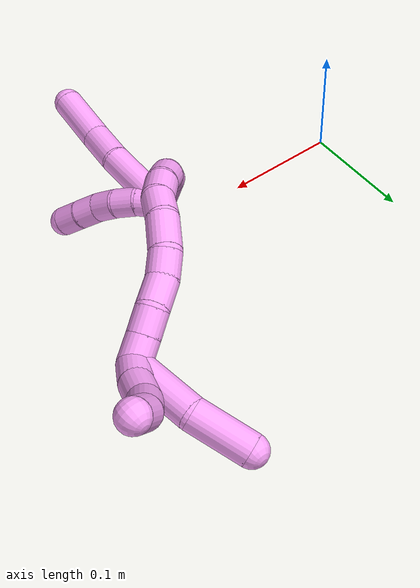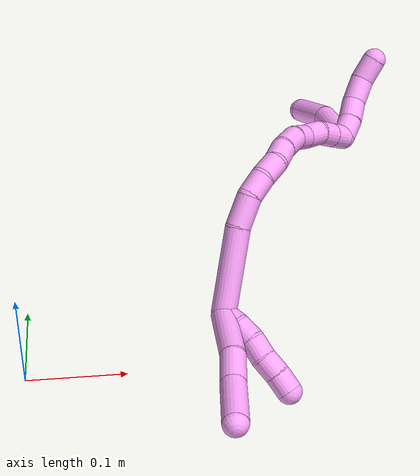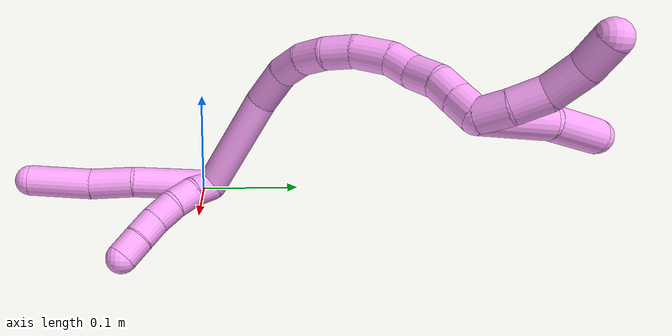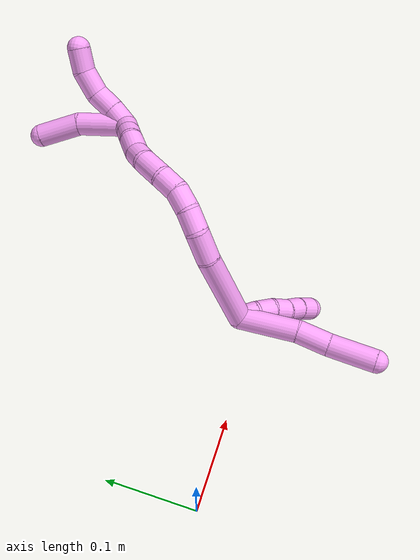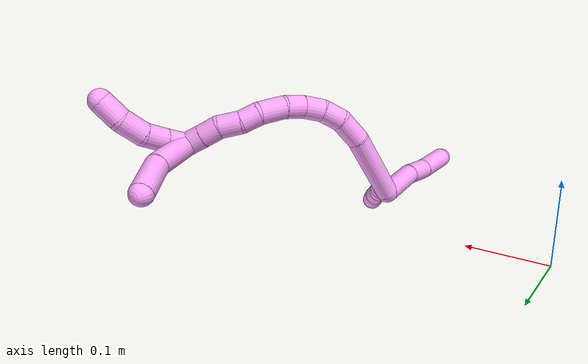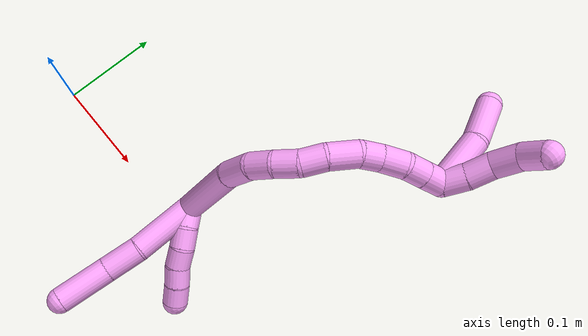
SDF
<sdf version="1.7">
 <world name="default">
  <model name="4">
   <static>0</static>
   <link name="4">
    <collision name="collision-cylinder-e_1_2_8">
     <pose>-3.3e-05 -0.001023 -0.031783 3.10941 -0.001044 -0.06487</pose>
     <geometry><cylinder><radius>0.0125</radius><length>0.063599</length></cylinder></geometry>
     <surface>
      <friction><ode><mu>1.16</mu><mu2>1.16</mu2><slip1>0</slip1><slip2>0</slip2></ode></friction>
      <contact><ode><kp>1e+06</kp><kd>1</kd><max_vel>0</max_vel><min_depth>0.001</min_depth></ode></contact>
     </surface>
    </collision>
    <visual name="visual-cylinder-e_1_2_8">
     <pose>-3.3e-05 -0.001023 -0.031783 3.10941 -0.001044 -0.06487</pose>
     <geometry><cylinder><radius>0.0125</radius><length>0.063599</length></cylinder></geometry>
     <material><ambient>1 0.65098 0.996078 1</ambient></material>
    </visual>
    <collision name="collision-cylinder-e_2_8_9">
     <pose>0.000993 -0.005705 -0.080746 2.93179 0.060249 0.557502</pose>
     <geometry><cylinder><radius>0.0125</radius><length>0.035195</length></cylinder></geometry>
     <surface>
      <friction><ode><mu>1.16</mu><mu2>1.16</mu2><slip1>0</slip1><slip2>0</slip2></ode></friction>
      <contact><ode><kp>1e+06</kp><kd>1</kd><max_vel>0</max_vel><min_depth>0.001</min_depth></ode></contact>
     </surface>
    </collision>
    <visual name="visual-cylinder-e_2_8_9">
     <pose>0.000993 -0.005705 -0.080746 2.93179 0.060249 0.557502</pose>
     <geometry><cylinder><radius>0.0125</radius><length>0.035195</length></cylinder></geometry>
     <material><ambient>1 0.65098 0.996078 1</ambient></material>
    </visual>
    <collision name="collision-cylinder-e_3_9_6">
     <pose>0.004317 -0.01164 -0.123328 3.05219 0.088542 1.5611</pose>
     <geometry><cylinder><radius>0.0125</radius><length>0.051206</length></cylinder></geometry>
     <surface>
      <friction><ode><mu>1.16</mu><mu2>1.16</mu2><slip1>0</slip1><slip2>0</slip2></ode></friction>
      <contact><ode><kp>1e+06</kp><kd>1</kd><max_vel>0</max_vel><min_depth>0.001</min_depth></ode></contact>
     </surface>
    </collision>
    <visual name="visual-cylinder-e_3_9_6">
     <pose>0.004317 -0.01164 -0.123328 3.05219 0.088542 1.5611</pose>
     <geometry><cylinder><radius>0.0125</radius><length>0.051206</length></cylinder></geometry>
     <material><ambient>1 0.65098 0.996078 1</ambient></material>
    </visual>
    <collision name="collision-cylinder-e_1_2_10">
     <pose>-0.006199 0.00119 -0.007756 -2.98936 -0.668604 2.70933</pose>
     <geometry><cylinder><radius>0.0125</radius><length>0.02</length></cylinder></geometry>
     <surface>
      <friction><ode><mu>1.16</mu><mu2>1.16</mu2><slip1>0</slip1><slip2>0</slip2></ode></friction>
      <contact><ode><kp>1e+06</kp><kd>1</kd><max_vel>0</max_vel><min_depth>0.001</min_depth></ode></contact>
     </surface>
    </collision>
    <visual name="visual-cylinder-e_1_2_10">
     <pose>-0.006199 0.00119 -0.007756 -2.98936 -0.668604 2.70933</pose>
     <geometry><cylinder><radius>0.0125</radius><length>0.02</length></cylinder></geometry>
     <material><ambient>1 0.65098 0.996078 1</ambient></material>
    </visual>
    <collision name="collision-cylinder-e_2_10_11">
     <pose>-0.019267 0.001507 -0.022727 3.02122 -0.75724 -2.84093</pose>
     <geometry><cylinder><radius>0.0125</radius><length>0.02</length></cylinder></geometry>
     <surface>
      <friction><ode><mu>1.16</mu><mu2>1.16</mu2><slip1>0</slip1><slip2>0</slip2></ode></friction>
      <contact><ode><kp>1e+06</kp><kd>1</kd><max_vel>0</max_vel><min_depth>0.001</min_depth></ode></contact>
     </surface>
    </collision>
    <visual name="visual-cylinder-e_2_10_11">
     <pose>-0.019267 0.001507 -0.022727 3.02122 -0.75724 -2.84093</pose>
     <geometry><cylinder><radius>0.0125</radius><length>0.02</length></cylinder></geometry>
     <material><ambient>1 0.65098 0.996078 1</ambient></material>
    </visual>
    <collision name="collision-cylinder-e_3_11_12">
     <pose>-0.032717 -0.002492 -0.036791 2.71339 -0.71827 -2.09164</pose>
     <geometry><cylinder><radius>0.0125</radius><length>0.02</length></cylinder></geometry>
     <surface>
      <friction><ode><mu>1.16</mu><mu2>1.16</mu2><slip1>0</slip1><slip2>0</slip2></ode></friction>
      <contact><ode><kp>1e+06</kp><kd>1</kd><max_vel>0</max_vel><min_depth>0.001</min_depth></ode></contact>
     </surface>
    </collision>
    <visual name="visual-cylinder-e_3_11_12">
     <pose>-0.032717 -0.002492 -0.036791 2.71339 -0.71827 -2.09164</pose>
     <geometry><cylinder><radius>0.0125</radius><length>0.02</length></cylinder></geometry>
     <material><ambient>1 0.65098 0.996078 1</ambient></material>
    </visual>
    <collision name="collision-cylinder-e_4_12_13">
     <pose>-0.047191 -0.008129 -0.049244 2.72043 -0.909714 -2.31751</pose>
     <geometry><cylinder><radius>0.0125</radius><length>0.02</length></cylinder></geometry>
     <surface>
      <friction><ode><mu>1.16</mu><mu2>1.16</mu2><slip1>0</slip1><slip2>0</slip2></ode></friction>
      <contact><ode><kp>1e+06</kp><kd>1</kd><max_vel>0</max_vel><min_depth>0.001</min_depth></ode></contact>
     </surface>
    </collision>
    <visual name="visual-cylinder-e_4_12_13">
     <pose>-0.047191 -0.008129 -0.049244 2.72043 -0.909714 -2.31751</pose>
     <geometry><cylinder><radius>0.0125</radius><length>0.02</length></cylinder></geometry>
     <material><ambient>1 0.65098 0.996078 1</ambient></material>
    </visual>
    <collision name="collision-cylinder-e_5_13_5">
     <pose>-0.062521 -0.014026 -0.060611 2.61024 -0.8385 -2.0453</pose>
     <geometry><cylinder><radius>0.0125</radius><length>0.02</length></cylinder></geometry>
     <surface>
      <friction><ode><mu>1.16</mu><mu2>1.16</mu2><slip1>0</slip1><slip2>0</slip2></ode></friction>
      <contact><ode><kp>1e+06</kp><kd>1</kd><max_vel>0</max_vel><min_depth>0.001</min_depth></ode></contact>
     </surface>
    </collision>
    <visual name="visual-cylinder-e_5_13_5">
     <pose>-0.062521 -0.014026 -0.060611 2.61024 -0.8385 -2.0453</pose>
     <geometry><cylinder><radius>0.0125</radius><length>0.02</length></cylinder></geometry>
     <material><ambient>1 0.65098 0.996078 1</ambient></material>
    </visual>
    <collision name="collision-cylinder-e_1_2_14">
     <pose>0.009866 0.038268 0.017063 -1.15136 0.231257 -0.150477</pose>
     <geometry><cylinder><radius>0.0125</radius><length>0.086091</length></cylinder></geometry>
     <surface>
      <friction><ode><mu>1.16</mu><mu2>1.16</mu2><slip1>0</slip1><slip2>0</slip2></ode></friction>
      <contact><ode><kp>1e+06</kp><kd>1</kd><max_vel>0</max_vel><min_depth>0.001</min_depth></ode></contact>
     </surface>
    </collision>
    <visual name="visual-cylinder-e_1_2_14">
     <pose>0.009866 0.038268 0.017063 -1.15136 0.231257 -0.150477</pose>
     <geometry><cylinder><radius>0.0125</radius><length>0.086091</length></cylinder></geometry>
     <material><ambient>1 0.65098 0.996078 1</ambient></material>
    </visual>
    <collision name="collision-cylinder-e_2_14_15">
     <pose>0.019964 0.090963 0.040831 -1.1358 0.014583 -0.009304</pose>
     <geometry><cylinder><radius>0.0125</radius><length>0.031822</length></cylinder></geometry>
     <surface>
      <friction><ode><mu>1.16</mu><mu2>1.16</mu2><slip1>0</slip1><slip2>0</slip2></ode></friction>
      <contact><ode><kp>1e+06</kp><kd>1</kd><max_vel>0</max_vel><min_depth>0.001</min_depth></ode></contact>
     </surface>
    </collision>
    <visual name="visual-cylinder-e_2_14_15">
     <pose>0.019964 0.090963 0.040831 -1.1358 0.014583 -0.009304</pose>
     <geometry><cylinder><radius>0.0125</radius><length>0.031822</length></cylinder></geometry>
     <material><ambient>1 0.65098 0.996078 1</ambient></material>
    </visual>
    <collision name="collision-cylinder-e_3_15_16">
     <pose>0.016718 0.114783 0.053829 -0.980394 -0.298436 0.160107</pose>
     <geometry><cylinder><radius>0.0125</radius><length>0.023658</length></cylinder></geometry>
     <surface>
      <friction><ode><mu>1.16</mu><mu2>1.16</mu2><slip1>0</slip1><slip2>0</slip2></ode></friction>
      <contact><ode><kp>1e+06</kp><kd>1</kd><max_vel>0</max_vel><min_depth>0.001</min_depth></ode></contact>
     </surface>
    </collision>
    <visual name="visual-cylinder-e_3_15_16">
     <pose>0.016718 0.114783 0.053829 -0.980394 -0.298436 0.160107</pose>
     <geometry><cylinder><radius>0.0125</radius><length>0.023658</length></cylinder></geometry>
     <material><ambient>1 0.65098 0.996078 1</ambient></material>
    </visual>
    <collision name="collision-cylinder-e_4_16_17">
     <pose>0.008173 0.13103 0.067565 -0.744375 -0.464332 0.184074</pose>
     <geometry><cylinder><radius>0.0125</radius><length>0.02263</length></cylinder></geometry>
     <surface>
      <friction><ode><mu>1.16</mu><mu2>1.16</mu2><slip1>0</slip1><slip2>0</slip2></ode></friction>
      <contact><ode><kp>1e+06</kp><kd>1</kd><max_vel>0</max_vel><min_depth>0.001</min_depth></ode></contact>
     </surface>
    </collision>
    <visual name="visual-cylinder-e_4_16_17">
     <pose>0.008173 0.13103 0.067565 -0.744375 -0.464332 0.184074</pose>
     <geometry><cylinder><radius>0.0125</radius><length>0.02263</length></cylinder></geometry>
     <material><ambient>1 0.65098 0.996078 1</ambient></material>
    </visual>
    <collision name="collision-cylinder-e_5_17_18">
     <pose>-0.000758 0.142391 0.084714 -0.434552 -0.346408 0.077209</pose>
     <geometry><cylinder><radius>0.0125</radius><length>0.022759</length></cylinder></geometry>
     <surface>
      <friction><ode><mu>1.16</mu><mu2>1.16</mu2><slip1>0</slip1><slip2>0</slip2></ode></friction>
      <contact><ode><kp>1e+06</kp><kd>1</kd><max_vel>0</max_vel><min_depth>0.001</min_depth></ode></contact>
     </surface>
    </collision>
    <visual name="visual-cylinder-e_5_17_18">
     <pose>-0.000758 0.142391 0.084714 -0.434552 -0.346408 0.077209</pose>
     <geometry><cylinder><radius>0.0125</radius><length>0.022759</length></cylinder></geometry>
     <material><ambient>1 0.65098 0.996078 1</ambient></material>
    </visual>
    <collision name="collision-cylinder-e_6_18_19">
     <pose>-0.012081 0.150086 0.106296 -0.26242 -0.545407 0.073782</pose>
     <geometry><cylinder><radius>0.0125</radius><length>0.028759</length></cylinder></geometry>
     <surface>
      <friction><ode><mu>1.16</mu><mu2>1.16</mu2><slip1>0</slip1><slip2>0</slip2></ode></friction>
      <contact><ode><kp>1e+06</kp><kd>1</kd><max_vel>0</max_vel><min_depth>0.001</min_depth></ode></contact>
     </surface>
    </collision>
    <visual name="visual-cylinder-e_6_18_19">
     <pose>-0.012081 0.150086 0.106296 -0.26242 -0.545407 0.073782</pose>
     <geometry><cylinder><radius>0.0125</radius><length>0.028759</length></cylinder></geometry>
     <material><ambient>1 0.65098 0.996078 1</ambient></material>
    </visual>
    <collision name="collision-cylinder-e_7_19_20">
     <pose>-0.027039 0.153556 0.125009 -0.041027 -0.830732 0.018096</pose>
     <geometry><cylinder><radius>0.0125</radius><length>0.020308</length></cylinder></geometry>
     <surface>
      <friction><ode><mu>1.16</mu><mu2>1.16</mu2><slip1>0</slip1><slip2>0</slip2></ode></friction>
      <contact><ode><kp>1e+06</kp><kd>1</kd><max_vel>0</max_vel><min_depth>0.001</min_depth></ode></contact>
     </surface>
    </collision>
    <visual name="visual-cylinder-e_7_19_20">
     <pose>-0.027039 0.153556 0.125009 -0.041027 -0.830732 0.018096</pose>
     <geometry><cylinder><radius>0.0125</radius><length>0.020308</length></cylinder></geometry>
     <material><ambient>1 0.65098 0.996078 1</ambient></material>
    </visual>
    <collision name="collision-cylinder-e_8_20_21">
     <pose>-0.043816 0.157012 0.138551 -0.442541 -0.896649 0.215562</pose>
     <geometry><cylinder><radius>0.0125</radius><length>0.023757</length></cylinder></geometry>
     <surface>
      <friction><ode><mu>1.16</mu><mu2>1.16</mu2><slip1>0</slip1><slip2>0</slip2></ode></friction>
      <contact><ode><kp>1e+06</kp><kd>1</kd><max_vel>0</max_vel><min_depth>0.001</min_depth></ode></contact>
     </surface>
    </collision>
    <visual name="visual-cylinder-e_8_20_21">
     <pose>-0.043816 0.157012 0.138551 -0.442541 -0.896649 0.215562</pose>
     <geometry><cylinder><radius>0.0125</radius><length>0.023757</length></cylinder></geometry>
     <material><ambient>1 0.65098 0.996078 1</ambient></material>
    </visual>
    <collision name="collision-cylinder-e_9_21_22">
     <pose>-0.061845 0.16003 0.150106 0.03242 -1.06405 -0.019085</pose>
     <geometry><cylinder><radius>0.0125</radius><length>0.020012</length></cylinder></geometry>
     <surface>
      <friction><ode><mu>1.16</mu><mu2>1.16</mu2><slip1>0</slip1><slip2>0</slip2></ode></friction>
      <contact><ode><kp>1e+06</kp><kd>1</kd><max_vel>0</max_vel><min_depth>0.001</min_depth></ode></contact>
     </surface>
    </collision>
    <visual name="visual-cylinder-e_9_21_22">
     <pose>-0.061845 0.16003 0.150106 0.03242 -1.06405 -0.019085</pose>
     <geometry><cylinder><radius>0.0125</radius><length>0.020012</length></cylinder></geometry>
     <material><ambient>1 0.65098 0.996078 1</ambient></material>
    </visual>
    <collision name="collision-cylinder-e_10_22_1">
     <pose>-0.079475 0.159924 0.159773 -0.010723 -1.07411 0.006385</pose>
     <geometry><cylinder><radius>0.0125</radius><length>0.020204</length></cylinder></geometry>
     <surface>
      <friction><ode><mu>1.16</mu><mu2>1.16</mu2><slip1>0</slip1><slip2>0</slip2></ode></friction>
      <contact><ode><kp>1e+06</kp><kd>1</kd><max_vel>0</max_vel><min_depth>0.001</min_depth></ode></contact>
     </surface>
    </collision>
    <visual name="visual-cylinder-e_10_22_1">
     <pose>-0.079475 0.159924 0.159773 -0.010723 -1.07411 0.006385</pose>
     <geometry><cylinder><radius>0.0125</radius><length>0.020204</length></cylinder></geometry>
     <material><ambient>1 0.65098 0.996078 1</ambient></material>
    </visual>
    <collision name="collision-cylinder-e_1_1_23">
     <pose>-0.09106 0.166969 0.173371 -0.672377 -0.236301 0.082915</pose>
     <geometry><cylinder><radius>0.0125</radius><length>0.023099</length></cylinder></geometry>
     <surface>
      <friction><ode><mu>1.16</mu><mu2>1.16</mu2><slip1>0</slip1><slip2>0</slip2></ode></friction>
      <contact><ode><kp>1e+06</kp><kd>1</kd><max_vel>0</max_vel><min_depth>0.001</min_depth></ode></contact>
     </surface>
    </collision>
    <visual name="visual-cylinder-e_1_1_23">
     <pose>-0.09106 0.166969 0.173371 -0.672377 -0.236301 0.082915</pose>
     <geometry><cylinder><radius>0.0125</radius><length>0.023099</length></cylinder></geometry>
     <material><ambient>1 0.65098 0.996078 1</ambient></material>
    </visual>
    <collision name="collision-cylinder-e_2_23_24">
     <pose>-0.094662 0.181144 0.191974 -0.631439 -0.073737 0.024096</pose>
     <geometry><cylinder><radius>0.0125</radius><length>0.024395</length></cylinder></geometry>
     <surface>
      <friction><ode><mu>1.16</mu><mu2>1.16</mu2><slip1>0</slip1><slip2>0</slip2></ode></friction>
      <contact><ode><kp>1e+06</kp><kd>1</kd><max_vel>0</max_vel><min_depth>0.001</min_depth></ode></contact>
     </surface>
    </collision>
    <visual name="visual-cylinder-e_2_23_24">
     <pose>-0.094662 0.181144 0.191974 -0.631439 -0.073737 0.024096</pose>
     <geometry><cylinder><radius>0.0125</radius><length>0.024395</length></cylinder></geometry>
     <material><ambient>1 0.65098 0.996078 1</ambient></material>
    </visual>
    <collision name="collision-cylinder-e_3_24_25">
     <pose>-0.09634 0.199582 0.209512 -0.969772 -0.057043 0.030059</pose>
     <geometry><cylinder><radius>0.0125</radius><length>0.027343</length></cylinder></geometry>
     <surface>
      <friction><ode><mu>1.16</mu><mu2>1.16</mu2><slip1>0</slip1><slip2>0</slip2></ode></friction>
      <contact><ode><kp>1e+06</kp><kd>1</kd><max_vel>0</max_vel><min_depth>0.001</min_depth></ode></contact>
     </surface>
    </collision>
    <visual name="visual-cylinder-e_3_24_25">
     <pose>-0.09634 0.199582 0.209512 -0.969772 -0.057043 0.030059</pose>
     <geometry><cylinder><radius>0.0125</radius><length>0.027343</length></cylinder></geometry>
     <material><ambient>1 0.65098 0.996078 1</ambient></material>
    </visual>
    <collision name="collision-cylinder-e_4_25_4">
     <pose>-0.098548 0.222838 0.220734 -1.28665 -0.113748 0.08532</pose>
     <geometry><cylinder><radius>0.0125</radius><length>0.025163</length></cylinder></geometry>
     <surface>
      <friction><ode><mu>1.16</mu><mu2>1.16</mu2><slip1>0</slip1><slip2>0</slip2></ode></friction>
      <contact><ode><kp>1e+06</kp><kd>1</kd><max_vel>0</max_vel><min_depth>0.001</min_depth></ode></contact>
     </surface>
    </collision>
    <visual name="visual-cylinder-e_4_25_4">
     <pose>-0.098548 0.222838 0.220734 -1.28665 -0.113748 0.08532</pose>
     <geometry><cylinder><radius>0.0125</radius><length>0.025163</length></cylinder></geometry>
     <material><ambient>1 0.65098 0.996078 1</ambient></material>
    </visual>
    <collision name="collision-cylinder-e_1_1_26">
     <pose>-0.085387 0.157591 0.191188 0.089408 0.11072 0.004958</pose>
     <geometry><cylinder><radius>0.0125</radius><length>0.053747</length></cylinder></geometry>
     <surface>
      <friction><ode><mu>1.16</mu><mu2>1.16</mu2><slip1>0</slip1><slip2>0</slip2></ode></friction>
      <contact><ode><kp>1e+06</kp><kd>1</kd><max_vel>0</max_vel><min_depth>0.001</min_depth></ode></contact>
     </surface>
    </collision>
    <visual name="visual-cylinder-e_1_1_26">
     <pose>-0.085387 0.157591 0.191188 0.089408 0.11072 0.004958</pose>
     <geometry><cylinder><radius>0.0125</radius><length>0.053747</length></cylinder></geometry>
     <material><ambient>1 0.65098 0.996078 1</ambient></material>
    </visual>
    <collision name="collision-cylinder-e_2_26_3">
     <pose>-0.077251 0.146763 0.238692 0.383925 0.225294 0.043966</pose>
     <geometry><cylinder><radius>0.0125</radius><length>0.046253</length></cylinder></geometry>
     <surface>
      <friction><ode><mu>1.16</mu><mu2>1.16</mu2><slip1>0</slip1><slip2>0</slip2></ode></friction>
      <contact><ode><kp>1e+06</kp><kd>1</kd><max_vel>0</max_vel><min_depth>0.001</min_depth></ode></contact>
     </surface>
    </collision>
    <visual name="visual-cylinder-e_2_26_3">
     <pose>-0.077251 0.146763 0.238692 0.383925 0.225294 0.043966</pose>
     <geometry><cylinder><radius>0.0125</radius><length>0.046253</length></cylinder></geometry>
     <material><ambient>1 0.65098 0.996078 1</ambient></material>
    </visual>
    <collision name="collision-sphere-3">
     <pose>-0.072085 0.138319 0.259593 0 -0 0</pose>
     <geometry><sphere><radius>0.0125</radius></sphere></geometry>
     <surface>
      <friction><ode><mu>1.16</mu><mu2>1.16</mu2><slip1>0</slip1><slip2>0</slip2></ode></friction>
      <contact><ode><kp>1e+06</kp><kd>1</kd><max_vel>0</max_vel><min_depth>0.001</min_depth></ode></contact>
     </surface>
    </collision>
    <visual name="visual-sphere-3">
     <pose>-0.072085 0.138319 0.259593 0 -0 0</pose>
     <geometry><sphere><radius>0.0125</radius></sphere></geometry>
     <material><ambient>1 0.65098 0.996078 1</ambient></material>
    </visual>
    <collision name="collision-sphere-26">
     <pose>-0.082417 0.155206 0.217791 0 -0 0</pose>
     <geometry><sphere><radius>0.0125</radius></sphere></geometry>
     <surface>
      <friction><ode><mu>1.16</mu><mu2>1.16</mu2><slip1>0</slip1><slip2>0</slip2></ode></friction>
      <contact><ode><kp>1e+06</kp><kd>1</kd><max_vel>0</max_vel><min_depth>0.001</min_depth></ode></contact>
     </surface>
    </collision>
    <visual name="visual-sphere-26">
     <pose>-0.082417 0.155206 0.217791 0 -0 0</pose>
     <geometry><sphere><radius>0.0125</radius></sphere></geometry>
     <material><ambient>1 0.65098 0.996078 1</ambient></material>
    </visual>
    <collision name="collision-sphere-4">
     <pose>-0.099976 0.234837 0.224239 0 -0 0</pose>
     <geometry><sphere><radius>0.0125</radius></sphere></geometry>
     <surface>
      <friction><ode><mu>1.16</mu><mu2>1.16</mu2><slip1>0</slip1><slip2>0</slip2></ode></friction>
      <contact><ode><kp>1e+06</kp><kd>1</kd><max_vel>0</max_vel><min_depth>0.001</min_depth></ode></contact>
     </surface>
    </collision>
    <visual name="visual-sphere-4">
     <pose>-0.099976 0.234837 0.224239 0 -0 0</pose>
     <geometry><sphere><radius>0.0125</radius></sphere></geometry>
     <material><ambient>1 0.65098 0.996078 1</ambient></material>
    </visual>
    <collision name="collision-sphere-25">
     <pose>-0.09712 0.210839 0.21723 0 -0 0</pose>
     <geometry><sphere><radius>0.0125</radius></sphere></geometry>
     <surface>
      <friction><ode><mu>1.16</mu><mu2>1.16</mu2><slip1>0</slip1><slip2>0</slip2></ode></friction>
      <contact><ode><kp>1e+06</kp><kd>1</kd><max_vel>0</max_vel><min_depth>0.001</min_depth></ode></contact>
     </surface>
    </collision>
    <visual name="visual-sphere-25">
     <pose>-0.09712 0.210839 0.21723 0 -0 0</pose>
     <geometry><sphere><radius>0.0125</radius></sphere></geometry>
     <material><ambient>1 0.65098 0.996078 1</ambient></material>
    </visual>
    <collision name="collision-sphere-24">
     <pose>-0.095561 0.188324 0.201793 0 -0 0</pose>
     <geometry><sphere><radius>0.0125</radius></sphere></geometry>
     <surface>
      <friction><ode><mu>1.16</mu><mu2>1.16</mu2><slip1>0</slip1><slip2>0</slip2></ode></friction>
      <contact><ode><kp>1e+06</kp><kd>1</kd><max_vel>0</max_vel><min_depth>0.001</min_depth></ode></contact>
     </surface>
    </collision>
    <visual name="visual-sphere-24">
     <pose>-0.095561 0.188324 0.201793 0 -0 0</pose>
     <geometry><sphere><radius>0.0125</radius></sphere></geometry>
     <material><ambient>1 0.65098 0.996078 1</ambient></material>
    </visual>
    <collision name="collision-sphere-23">
     <pose>-0.093764 0.173963 0.182156 0 -0 0</pose>
     <geometry><sphere><radius>0.0125</radius></sphere></geometry>
     <surface>
      <friction><ode><mu>1.16</mu><mu2>1.16</mu2><slip1>0</slip1><slip2>0</slip2></ode></friction>
      <contact><ode><kp>1e+06</kp><kd>1</kd><max_vel>0</max_vel><min_depth>0.001</min_depth></ode></contact>
     </surface>
    </collision>
    <visual name="visual-sphere-23">
     <pose>-0.093764 0.173963 0.182156 0 -0 0</pose>
     <geometry><sphere><radius>0.0125</radius></sphere></geometry>
     <material><ambient>1 0.65098 0.996078 1</ambient></material>
    </visual>
    <collision name="collision-sphere-1">
     <pose>-0.088356 0.159976 0.164586 0 -0 0</pose>
     <geometry><sphere><radius>0.0125</radius></sphere></geometry>
     <surface>
      <friction><ode><mu>1.16</mu><mu2>1.16</mu2><slip1>0</slip1><slip2>0</slip2></ode></friction>
      <contact><ode><kp>1e+06</kp><kd>1</kd><max_vel>0</max_vel><min_depth>0.001</min_depth></ode></contact>
     </surface>
    </collision>
    <visual name="visual-sphere-1">
     <pose>-0.088356 0.159976 0.164586 0 -0 0</pose>
     <geometry><sphere><radius>0.0125</radius></sphere></geometry>
     <material><ambient>1 0.65098 0.996078 1</ambient></material>
    </visual>
    <collision name="collision-sphere-22">
     <pose>-0.070593 0.159872 0.154959 0 -0 0</pose>
     <geometry><sphere><radius>0.0125</radius></sphere></geometry>
     <surface>
      <friction><ode><mu>1.16</mu><mu2>1.16</mu2><slip1>0</slip1><slip2>0</slip2></ode></friction>
      <contact><ode><kp>1e+06</kp><kd>1</kd><max_vel>0</max_vel><min_depth>0.001</min_depth></ode></contact>
     </surface>
    </collision>
    <visual name="visual-sphere-22">
     <pose>-0.070593 0.159872 0.154959 0 -0 0</pose>
     <geometry><sphere><radius>0.0125</radius></sphere></geometry>
     <material><ambient>1 0.65098 0.996078 1</ambient></material>
    </visual>
    <collision name="collision-sphere-21">
     <pose>-0.053096 0.160187 0.145252 0 -0 0</pose>
     <geometry><sphere><radius>0.0125</radius></sphere></geometry>
     <surface>
      <friction><ode><mu>1.16</mu><mu2>1.16</mu2><slip1>0</slip1><slip2>0</slip2></ode></friction>
      <contact><ode><kp>1e+06</kp><kd>1</kd><max_vel>0</max_vel><min_depth>0.001</min_depth></ode></contact>
     </surface>
    </collision>
    <visual name="visual-sphere-21">
     <pose>-0.053096 0.160187 0.145252 0 -0 0</pose>
     <geometry><sphere><radius>0.0125</radius></sphere></geometry>
     <material><ambient>1 0.65098 0.996078 1</ambient></material>
    </visual>
    <collision name="collision-sphere-11">
     <pose>-0.026136 0.000634 -0.029942 0 -0 0</pose>
     <geometry><sphere><radius>0.0125</radius></sphere></geometry>
     <surface>
      <friction><ode><mu>1.16</mu><mu2>1.16</mu2><slip1>0</slip1><slip2>0</slip2></ode></friction>
      <contact><ode><kp>1e+06</kp><kd>1</kd><max_vel>0</max_vel><min_depth>0.001</min_depth></ode></contact>
     </surface>
    </collision>
    <visual name="visual-sphere-11">
     <pose>-0.026136 0.000634 -0.029942 0 -0 0</pose>
     <geometry><sphere><radius>0.0125</radius></sphere></geometry>
     <material><ambient>1 0.65098 0.996078 1</ambient></material>
    </visual>
    <collision name="collision-sphere-10">
     <pose>-0.012398 0.00238 -0.015512 0 -0 0</pose>
     <geometry><sphere><radius>0.0125</radius></sphere></geometry>
     <surface>
      <friction><ode><mu>1.16</mu><mu2>1.16</mu2><slip1>0</slip1><slip2>0</slip2></ode></friction>
      <contact><ode><kp>1e+06</kp><kd>1</kd><max_vel>0</max_vel><min_depth>0.001</min_depth></ode></contact>
     </surface>
    </collision>
    <visual name="visual-sphere-10">
     <pose>-0.012398 0.00238 -0.015512 0 -0 0</pose>
     <geometry><sphere><radius>0.0125</radius></sphere></geometry>
     <material><ambient>1 0.65098 0.996078 1</ambient></material>
    </visual>
    <collision name="collision-sphere-6">
     <pose>0.006581 -0.013917 -0.148729 0 -0 0</pose>
     <geometry><sphere><radius>0.0125</radius></sphere></geometry>
     <surface>
      <friction><ode><mu>1.16</mu><mu2>1.16</mu2><slip1>0</slip1><slip2>0</slip2></ode></friction>
      <contact><ode><kp>1e+06</kp><kd>1</kd><max_vel>0</max_vel><min_depth>0.001</min_depth></ode></contact>
     </surface>
    </collision>
    <visual name="visual-sphere-6">
     <pose>0.006581 -0.013917 -0.148729 0 -0 0</pose>
     <geometry><sphere><radius>0.0125</radius></sphere></geometry>
     <material><ambient>1 0.65098 0.996078 1</ambient></material>
    </visual>
    <collision name="collision-sphere-9">
     <pose>0.002053 -0.009363 -0.097927 0 -0 0</pose>
     <geometry><sphere><radius>0.0125</radius></sphere></geometry>
     <surface>
      <friction><ode><mu>1.16</mu><mu2>1.16</mu2><slip1>0</slip1><slip2>0</slip2></ode></friction>
      <contact><ode><kp>1e+06</kp><kd>1</kd><max_vel>0</max_vel><min_depth>0.001</min_depth></ode></contact>
     </surface>
    </collision>
    <visual name="visual-sphere-9">
     <pose>0.002053 -0.009363 -0.097927 0 -0 0</pose>
     <geometry><sphere><radius>0.0125</radius></sphere></geometry>
     <material><ambient>1 0.65098 0.996078 1</ambient></material>
    </visual>
    <collision name="collision-sphere-2">
     <geometry><sphere><radius>0.0125</radius></sphere></geometry>
     <surface>
      <friction><ode><mu>1.16</mu><mu2>1.16</mu2><slip1>0</slip1><slip2>0</slip2></ode></friction>
      <contact><ode><kp>1e+06</kp><kd>1</kd><max_vel>0</max_vel><min_depth>0.001</min_depth></ode></contact>
     </surface>
    </collision>
    <visual name="visual-sphere-2">
     <geometry><sphere><radius>0.0125</radius></sphere></geometry>
     <material><ambient>1 0.65098 0.996078 1</ambient></material>
    </visual>
    <collision name="collision-sphere-19">
     <pose>-0.019541 0.153275 0.118168 0 -0 0</pose>
     <geometry><sphere><radius>0.0125</radius></sphere></geometry>
     <surface>
      <friction><ode><mu>1.16</mu><mu2>1.16</mu2><slip1>0</slip1><slip2>0</slip2></ode></friction>
      <contact><ode><kp>1e+06</kp><kd>1</kd><max_vel>0</max_vel><min_depth>0.001</min_depth></ode></contact>
     </surface>
    </collision>
    <visual name="visual-sphere-19">
     <pose>-0.019541 0.153275 0.118168 0 -0 0</pose>
     <geometry><sphere><radius>0.0125</radius></sphere></geometry>
     <material><ambient>1 0.65098 0.996078 1</ambient></material>
    </visual>
    <collision name="collision-sphere-8">
     <pose>-6.6e-05 -0.002047 -0.063566 0 -0 0</pose>
     <geometry><sphere><radius>0.0125</radius></sphere></geometry>
     <surface>
      <friction><ode><mu>1.16</mu><mu2>1.16</mu2><slip1>0</slip1><slip2>0</slip2></ode></friction>
      <contact><ode><kp>1e+06</kp><kd>1</kd><max_vel>0</max_vel><min_depth>0.001</min_depth></ode></contact>
     </surface>
    </collision>
    <visual name="visual-sphere-8">
     <pose>-6.6e-05 -0.002047 -0.063566 0 -0 0</pose>
     <geometry><sphere><radius>0.0125</radius></sphere></geometry>
     <material><ambient>1 0.65098 0.996078 1</ambient></material>
    </visual>
    <collision name="collision-sphere-12">
     <pose>-0.039298 -0.005619 -0.043641 0 -0 0</pose>
     <geometry><sphere><radius>0.0125</radius></sphere></geometry>
     <surface>
      <friction><ode><mu>1.16</mu><mu2>1.16</mu2><slip1>0</slip1><slip2>0</slip2></ode></friction>
      <contact><ode><kp>1e+06</kp><kd>1</kd><max_vel>0</max_vel><min_depth>0.001</min_depth></ode></contact>
     </surface>
    </collision>
    <visual name="visual-sphere-12">
     <pose>-0.039298 -0.005619 -0.043641 0 -0 0</pose>
     <geometry><sphere><radius>0.0125</radius></sphere></geometry>
     <material><ambient>1 0.65098 0.996078 1</ambient></material>
    </visual>
    <collision name="collision-sphere-13">
     <pose>-0.055084 -0.010639 -0.054847 0 -0 0</pose>
     <geometry><sphere><radius>0.0125</radius></sphere></geometry>
     <surface>
      <friction><ode><mu>1.16</mu><mu2>1.16</mu2><slip1>0</slip1><slip2>0</slip2></ode></friction>
      <contact><ode><kp>1e+06</kp><kd>1</kd><max_vel>0</max_vel><min_depth>0.001</min_depth></ode></contact>
     </surface>
    </collision>
    <visual name="visual-sphere-13">
     <pose>-0.055084 -0.010639 -0.054847 0 -0 0</pose>
     <geometry><sphere><radius>0.0125</radius></sphere></geometry>
     <material><ambient>1 0.65098 0.996078 1</ambient></material>
    </visual>
    <collision name="collision-sphere-5">
     <pose>-0.069957 -0.017414 -0.066375 0 -0 0</pose>
     <geometry><sphere><radius>0.0125</radius></sphere></geometry>
     <surface>
      <friction><ode><mu>1.16</mu><mu2>1.16</mu2><slip1>0</slip1><slip2>0</slip2></ode></friction>
      <contact><ode><kp>1e+06</kp><kd>1</kd><max_vel>0</max_vel><min_depth>0.001</min_depth></ode></contact>
     </surface>
    </collision>
    <visual name="visual-sphere-5">
     <pose>-0.069957 -0.017414 -0.066375 0 -0 0</pose>
     <geometry><sphere><radius>0.0125</radius></sphere></geometry>
     <material><ambient>1 0.65098 0.996078 1</ambient></material>
    </visual>
    <collision name="collision-sphere-14">
     <pose>0.019732 0.076536 0.034126 0 -0 0</pose>
     <geometry><sphere><radius>0.0125</radius></sphere></geometry>
     <surface>
      <friction><ode><mu>1.16</mu><mu2>1.16</mu2><slip1>0</slip1><slip2>0</slip2></ode></friction>
      <contact><ode><kp>1e+06</kp><kd>1</kd><max_vel>0</max_vel><min_depth>0.001</min_depth></ode></contact>
     </surface>
    </collision>
    <visual name="visual-sphere-14">
     <pose>0.019732 0.076536 0.034126 0 -0 0</pose>
     <geometry><sphere><radius>0.0125</radius></sphere></geometry>
     <material><ambient>1 0.65098 0.996078 1</ambient></material>
    </visual>
    <collision name="collision-sphere-15">
     <pose>0.020196 0.105391 0.047535 0 -0 0</pose>
     <geometry><sphere><radius>0.0125</radius></sphere></geometry>
     <surface>
      <friction><ode><mu>1.16</mu><mu2>1.16</mu2><slip1>0</slip1><slip2>0</slip2></ode></friction>
      <contact><ode><kp>1e+06</kp><kd>1</kd><max_vel>0</max_vel><min_depth>0.001</min_depth></ode></contact>
     </surface>
    </collision>
    <visual name="visual-sphere-15">
     <pose>0.020196 0.105391 0.047535 0 -0 0</pose>
     <geometry><sphere><radius>0.0125</radius></sphere></geometry>
     <material><ambient>1 0.65098 0.996078 1</ambient></material>
    </visual>
    <collision name="collision-sphere-16">
     <pose>0.01324 0.124175 0.060123 0 -0 0</pose>
     <geometry><sphere><radius>0.0125</radius></sphere></geometry>
     <surface>
      <friction><ode><mu>1.16</mu><mu2>1.16</mu2><slip1>0</slip1><slip2>0</slip2></ode></friction>
      <contact><ode><kp>1e+06</kp><kd>1</kd><max_vel>0</max_vel><min_depth>0.001</min_depth></ode></contact>
     </surface>
    </collision>
    <visual name="visual-sphere-16">
     <pose>0.01324 0.124175 0.060123 0 -0 0</pose>
     <geometry><sphere><radius>0.0125</radius></sphere></geometry>
     <material><ambient>1 0.65098 0.996078 1</ambient></material>
    </visual>
    <collision name="collision-sphere-17">
     <pose>0.003106 0.137884 0.075006 0 -0 0</pose>
     <geometry><sphere><radius>0.0125</radius></sphere></geometry>
     <surface>
      <friction><ode><mu>1.16</mu><mu2>1.16</mu2><slip1>0</slip1><slip2>0</slip2></ode></friction>
      <contact><ode><kp>1e+06</kp><kd>1</kd><max_vel>0</max_vel><min_depth>0.001</min_depth></ode></contact>
     </surface>
    </collision>
    <visual name="visual-sphere-17">
     <pose>0.003106 0.137884 0.075006 0 -0 0</pose>
     <geometry><sphere><radius>0.0125</radius></sphere></geometry>
     <material><ambient>1 0.65098 0.996078 1</ambient></material>
    </visual>
    <collision name="collision-sphere-18">
     <pose>-0.004621 0.146897 0.094423 0 -0 0</pose>
     <geometry><sphere><radius>0.0125</radius></sphere></geometry>
     <surface>
      <friction><ode><mu>1.16</mu><mu2>1.16</mu2><slip1>0</slip1><slip2>0</slip2></ode></friction>
      <contact><ode><kp>1e+06</kp><kd>1</kd><max_vel>0</max_vel><min_depth>0.001</min_depth></ode></contact>
     </surface>
    </collision>
    <visual name="visual-sphere-18">
     <pose>-0.004621 0.146897 0.094423 0 -0 0</pose>
     <geometry><sphere><radius>0.0125</radius></sphere></geometry>
     <material><ambient>1 0.65098 0.996078 1</ambient></material>
    </visual>
    <collision name="collision-sphere-20">
     <pose>-0.034536 0.153837 0.131851 0 -0 0</pose>
     <geometry><sphere><radius>0.0125</radius></sphere></geometry>
     <surface>
      <friction><ode><mu>1.16</mu><mu2>1.16</mu2><slip1>0</slip1><slip2>0</slip2></ode></friction>
      <contact><ode><kp>1e+06</kp><kd>1</kd><max_vel>0</max_vel><min_depth>0.001</min_depth></ode></contact>
     </surface>
    </collision>
    <visual name="visual-sphere-20">
     <pose>-0.034536 0.153837 0.131851 0 -0 0</pose>
     <geometry><sphere><radius>0.0125</radius></sphere></geometry>
     <material><ambient>1 0.65098 0.996078 1</ambient></material>
    </visual>
    <inertial>
     <pose>-0.031368 0.088009 0.065579 0 -0 0</pose>
     <mass>0.75</mass>
     <inertia>
      <ixx>0.000123</ixx>
      <ixy>0</ixy>
      <ixz>0</ixz>
      <iyy>6.8e-05</iyy>
      <iyz>0</iyz>
      <izz>-5.1e-05</izz>
     </inertia>
    </inertial>
   </link>
   <pose>0.195843 0.016627 0.054451 1.6747 -0.504554 3.13595</pose>
  </model>
 </world>
</sdf>
